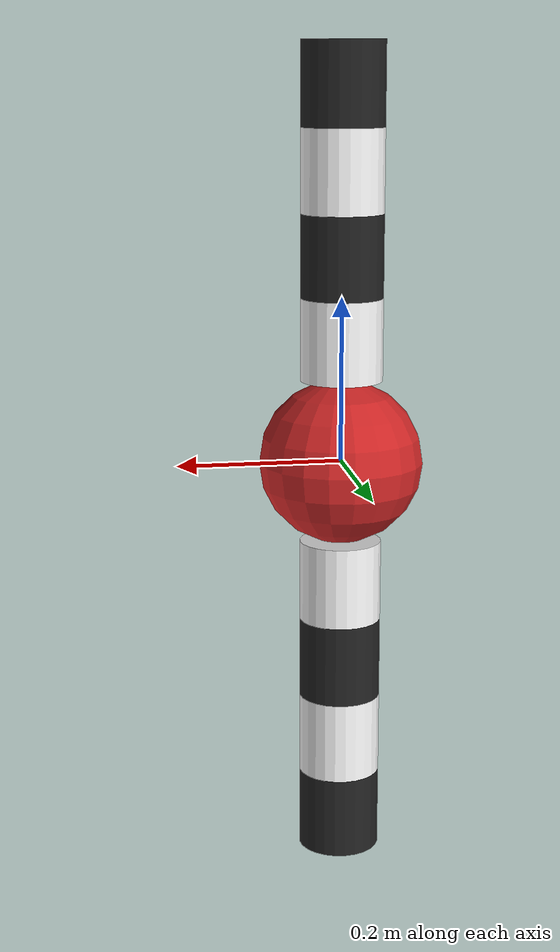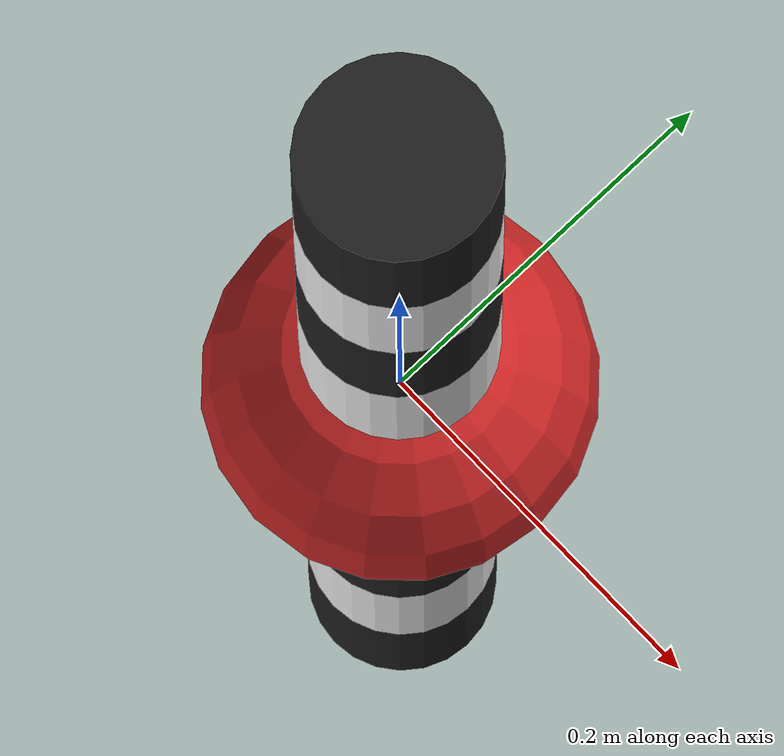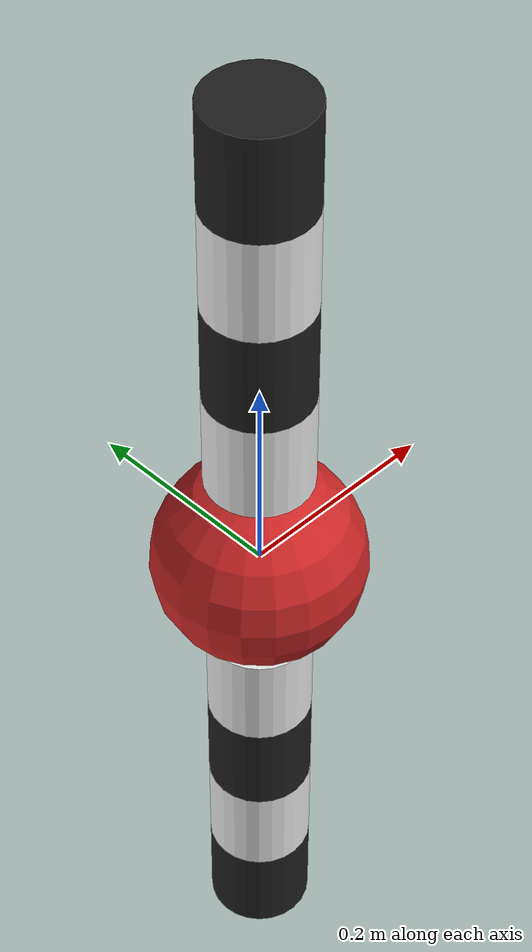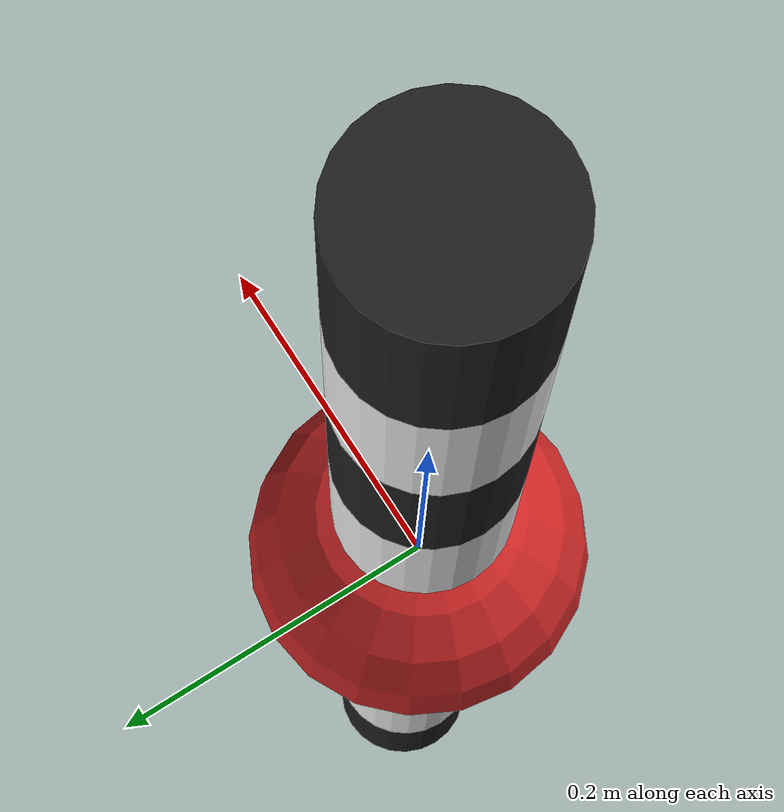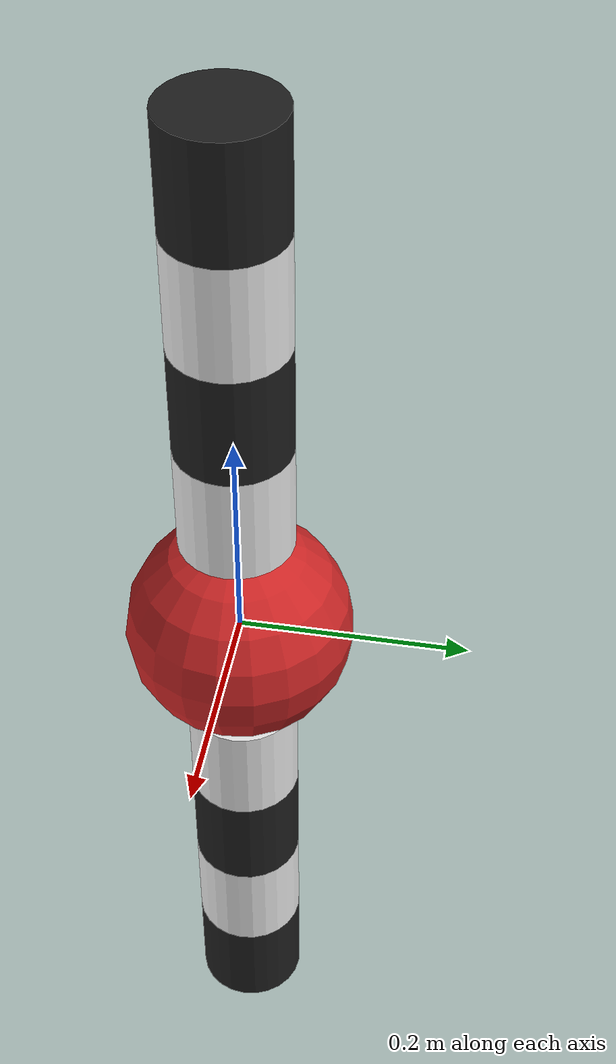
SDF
<?xml version="1.0"?>
<sdf version="1.6">
  <model name="wavegauge">
    <static>false</static>
    <pose>0 0 0 0 0 0</pose>
    <link name="base_link">
			<gravity>0</gravity>
      <inertial>
        <mass>0.000001</mass>
      </inertial>
      <visual name="visual">
        <geometry>
          <sphere>
						<radius>0.1</radius>
					</sphere>
        </geometry>
        <material>
          <script>
            <uri>file://media/materials/scripts/gazebo.material</uri>
            <name>Gazebo/Red</name>
          </script>
        </material>
      </visual>
      <collision name="collision">
        <geometry>
          <sphere><radius>0.1</radius></sphere>
        </geometry>
      </collision>
    </link>
    <plugin name="wavegauge_plugin" filename="libwavegauge_plugin.so">
      <wave_model>ocean_waves</wave_model>
      <fluid_level>0.0</fluid_level>
      <link name="link">
        <name>base_link</name>
        <center_of_volume>0 0 0</center_of_volume>
      </link>
    </plugin>
		<link name="bar1">
			<gravity>0</gravity>
      <inertial>
        <mass>0.000001</mass>
      </inertial>
			<pose frame="base_link"> 0 0 0.15 0 0 0 </pose>
			<visual name="visual">
				<geometry>
					<cylinder>
						<radius>0.05</radius>
						<length>0.1</length>
					</cylinder>
				</geometry>
				<material>
          <script>
            <uri>file://media/materials/scripts/gazebo.material</uri>
            <name>Gazebo/White</name>
          </script>
        </material>
      </visual>
		</link>
		<joint name="bar1" type="fixed">
			<parent>base_link</parent>
			<child>bar1</child>
			<pose>0 0 0.15 0 0 0 </pose>
		</joint>
		<link name="bar2">
			<gravity>0</gravity>
      <inertial>
        <mass>0.000001</mass>
      </inertial>
			<pose frame="base_link"> 0 0 0.25 0 0 0 </pose>
			<visual name="visual">
				<geometry>
					<cylinder>
						<radius>0.05</radius>
						<length>0.1</length>
					</cylinder>
				</geometry>
				<material>
          <script>
            <uri>file://media/materials/scripts/gazebo.material</uri>
            <name>Gazebo/Black</name>
          </script>
        </material>
      </visual>
		</link>
		<joint name="bar2" type="fixed">
			<parent>base_link</parent>
			<child>bar2</child>
			<pose>0 0 0.25 0 0 0 </pose>
		</joint>
		<link name="bar3">
			<gravity>0</gravity>
      <inertial>
        <mass>0.000001</mass>
      </inertial>
			<pose frame="base_link"> 0 0 0.35 0 0 0 </pose>
			<visual name="visual">
				<geometry>
					<cylinder>
						<radius>0.05</radius>
						<length>0.1</length>
					</cylinder>
				</geometry>
				<material>
          <script>
            <uri>file://media/materials/scripts/gazebo.material</uri>
            <name>Gazebo/White</name>
          </script>
        </material>
      </visual>
		</link>
		<joint name="bar3" type="fixed">
			<parent>base_link</parent>
			<child>bar3</child>
			<pose>0 0 0.35 0 0 0 </pose>
		</joint>
		<link name="bar4">
			<gravity>0</gravity>
      <inertial>
        <mass>0.000001</mass>
      </inertial>
			<pose frame="base_link"> 0 0 0.45 0 0 0 </pose>
			<visual name="visual">
				<geometry>
					<cylinder>
						<radius>0.05</radius>
						<length>0.1</length>
					</cylinder>
				</geometry>
				<material>
          <script>
            <uri>file://media/materials/scripts/gazebo.material</uri>
            <name>Gazebo/Black</name>
          </script>
        </material>
      </visual>
		</link>
		<joint name="bar4" type="fixed">
			<parent>base_link</parent>
			<child>bar4</child>
			<pose>0 0 0.45 0 0 0 </pose>
		</joint>

		<link name="bar10">
			<gravity>0</gravity>
      <inertial>
        <mass>0.000001</mass>
      </inertial>
			<pose frame="base_link"> 0 0 -0.15 0 0 0 </pose>
			<visual name="visual">
				<geometry>
					<cylinder>
						<radius>0.05</radius>
						<length>0.1</length>
					</cylinder>
				</geometry>
				<material>
          <script>
            <uri>file://media/materials/scripts/gazebo.material</uri>
            <name>Gazebo/White</name>
          </script>
        </material>
      </visual>
		</link>
		<joint name="bar10" type="fixed">
			<parent>base_link</parent>
			<child>bar10</child>
			<pose>0 0 -0.15 0 0 0 </pose>
		</joint>
		<link name="bar20">
			<gravity>0</gravity>
      <inertial>
        <mass>0.000001</mass>
      </inertial>
			<pose frame="base_link"> 0 0 -0.25 0 0 0 </pose>
			<visual name="visual">
				<geometry>
					<cylinder>
						<radius>0.05</radius>
						<length>0.1</length>
					</cylinder>
				</geometry>
				<material>
          <script>
            <uri>file://media/materials/scripts/gazebo.material</uri>
            <name>Gazebo/Black</name>
          </script>
        </material>
      </visual>
		</link>
		<joint name="bar20" type="fixed">
			<parent>base_link</parent>
			<child>bar20</child>
			<pose>0 0 -0.25 0 0 0 </pose>
		</joint>
		<link name="bar30">
			<gravity>0</gravity>
      <inertial>
        <mass>0.000001</mass>
      </inertial>
			<pose frame="base_link"> 0 0 -0.35 0 0 0 </pose>
			<visual name="visual">
				<geometry>
					<cylinder>
						<radius>0.05</radius>
						<length>0.1</length>
					</cylinder>
				</geometry>
				<material>
          <script>
            <uri>file://media/materials/scripts/gazebo.material</uri>
            <name>Gazebo/White</name>
          </script>
        </material>
      </visual>
		</link>
		<joint name="bar30" type="fixed">
			<parent>base_link</parent>
			<child>bar30</child>
			<pose>0 0 -0.35 0 0 0 </pose>
		</joint>
		<link name="bar40">
			<gravity>0</gravity>
      <inertial>
        <mass>0.000001</mass>
      </inertial>
			<pose frame="base_link"> 0 0 -0.45 0 0 0 </pose>
			<visual name="visual">
				<geometry>
					<cylinder>
						<radius>0.05</radius>
						<length>0.1</length>
					</cylinder>
				</geometry>
				<material>
          <script>
            <uri>file://media/materials/scripts/gazebo.material</uri>
            <name>Gazebo/Black</name>
          </script>
        </material>
      </visual>
		</link>
		<joint name="bar40" type="fixed">
			<parent>base_link</parent>
			<child>bar40</child>
			<pose>0 0 -0.45 0 0 0 </pose>
		</joint>
  </model>
</sdf>
